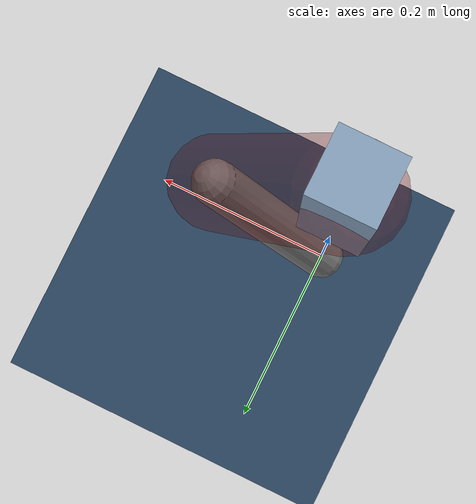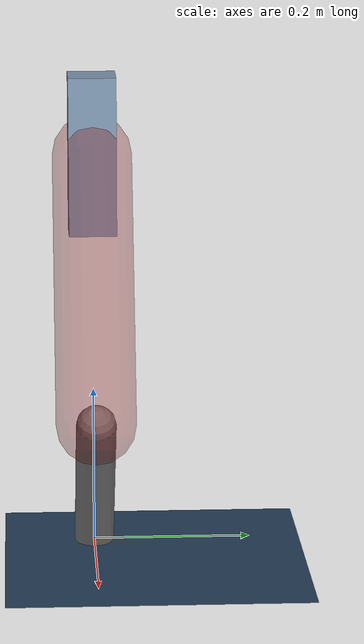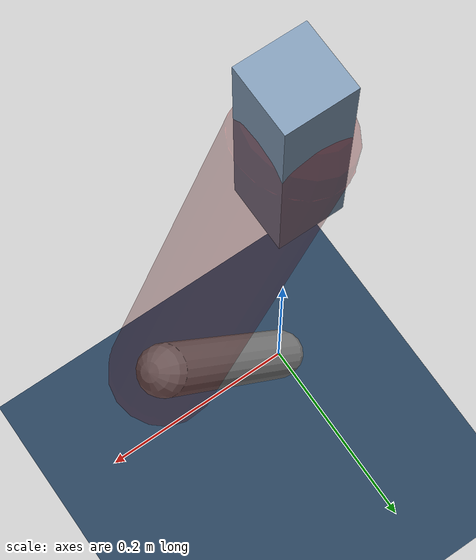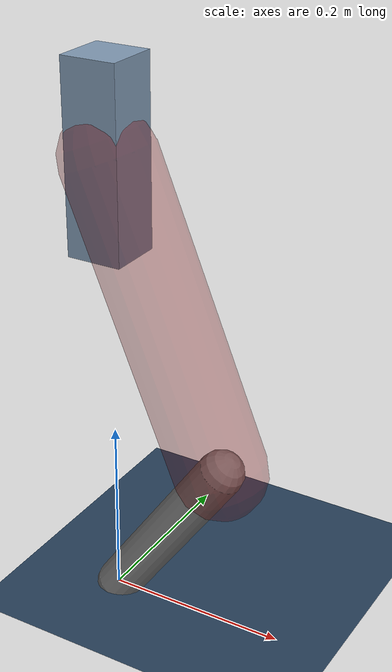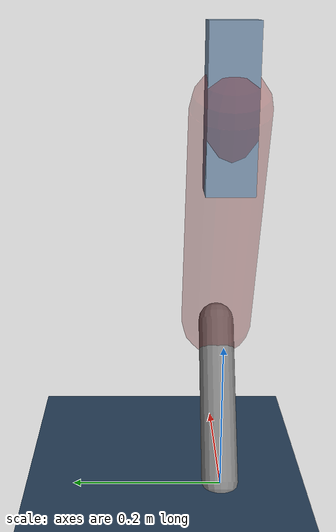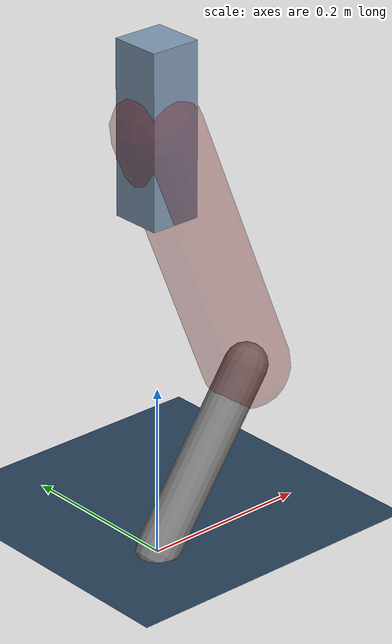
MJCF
<mujoco model="Hopper2D">
	<compiler inertiafromgeom="true" angle="radian" />
	<option timestep="0.001" integrator="implicit" cone="elliptic" solver="Newton" tolerance="1e-10" />

	<default>
		<geom contype="1" conaffinity="1" condim="3" friction="2 0.005 0.0001" solref="0.005 1" />
		<joint limited="true" damping="0.1" />
	</default>

	<asset>
		<texture name="skybox" type="skybox" builtin="gradient" rgb1=".4 .6 .8" rgb2="0 0 0" width="800" height="800" />
		<texture name="grid" type="2d" builtin="checker" rgb1=".1 .2 .3" rgb2=".2 .3 .4" width="300" height="300" mark="edge" markrgb=".2 .3 .4" />
		<material name="ground" texture="grid" texrepeat="1 1" texuniform="true" reflectance="0.1" />
		<material name="leg" rgba="0.5 0.6 0.7 1" />
	</asset>

	<worldbody>

		<geom name="floor" type="plane" size="5 5 0.25" material="ground" />

		<light directional="false" diffuse="0.8 0.8 0.8" specular="0.3 0.3 0.3" pos="0 0 2" dir="0 0 -1" />
		<light mode="targetbodycom" target="base" directional="false" diffuse="0.8 0.8 0.8" specular="0.3 0.3 0.3" pos="0 0 2" dir="0 0 -1" />

		<camera name="fixed" pos="0 -2 1" xyaxes="1 0 0 0 0 1" />
		<camera name="tracking" mode="trackcom" pos="0 -3 1" />

		<body name="root" pos="0 0 0.5053147304024281">
			<joint name="slide_x" type="slide" axis="1 0 0" range="-100 100" />
			<joint name="slide_z" type="slide" axis="0 0 1" range="0 10" />

			<body name="base" pos="0 0 0">
				<geom name="torso" type="box" size="0.03 0.03 0.1" mass="2.942" material="leg" />

				<body name="link1" pos="0 0 0" euler="0 1.1813760316327588 0">
					<joint type="hinge" axis="0 -1 0" pos="0 0 0" name="hinge1" limited="true" range="-3.14 3.14" stiffness="0" damping="0.1" />
					<geom name="thigh" type="capsule" fromto="0 0 0 0.34229437695727555 0 0" size="0.05" rgba="0.5 0 0 0.3" mass="1.1050242554803715" />

					<body name="link2" pos="0.34229437695727555 0 0" euler="0 0.9926328041586555 0">
						<joint type="hinge" axis="0 -1 0" pos="0 0 0" name="hinge2" limited="true" range="-3.14 3.14" stiffness="0" damping="0.1" />
						<geom name="shank" type="capsule" fromto="0 0 0 0.22907611100327124 0 0" size="0.025" mass="0.42526088880261703" />

					</body>
				</body>
			</body>
		</body>
	</worldbody>

	<actuator>
		<motor name="torque1" joint="hinge1" ctrlrange="-116.4801982214597 116.4801982214597" ctrllimited="true" gear="1" />
		<motor name="torque2" joint="hinge2" ctrlrange="-69.99920668261765 69.99920668261765" ctrllimited="true" gear="1" />
	</actuator>
</mujoco>
